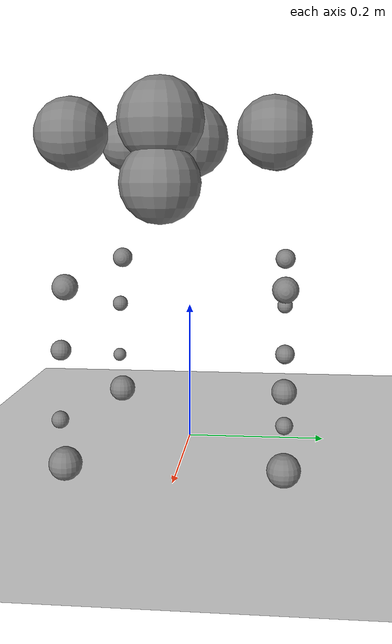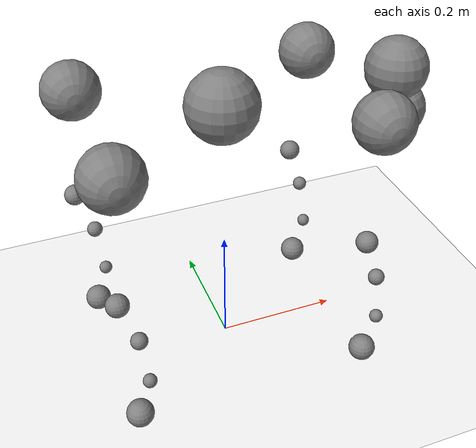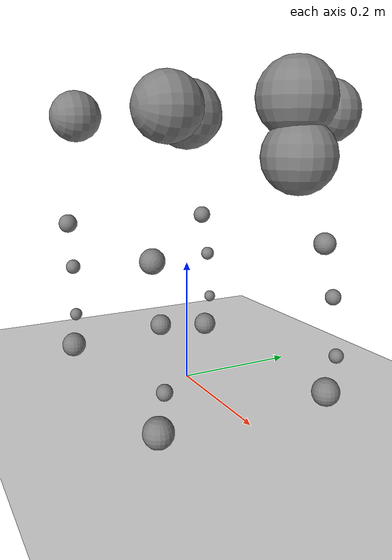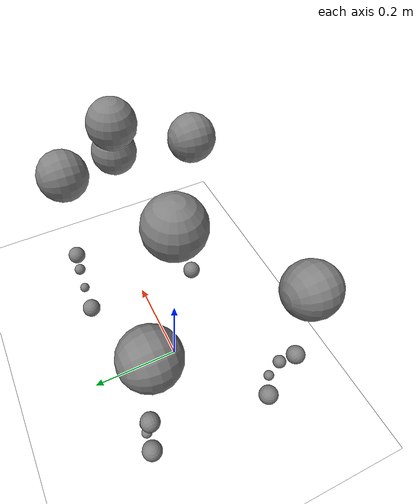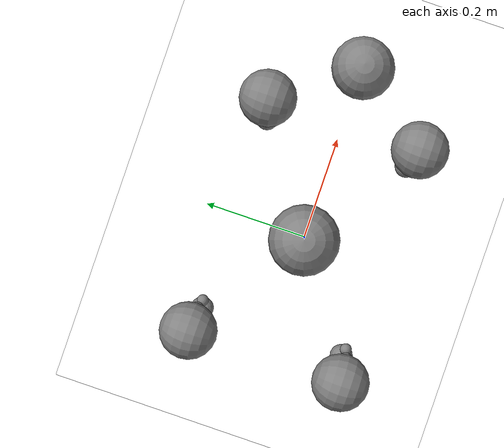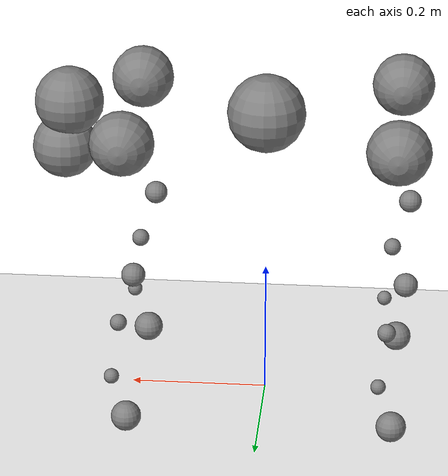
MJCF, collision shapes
<mujoco model="go2 feetonly flat terrain scene">
  <include file="go2_mjx_feetonly.xml"/>

  <statistic center="0 0 0.1" extent="0.8" meansize="0.04"/>

  <visual>
    <headlight diffuse=".8 .8 .8" ambient=".2 .2 .2" specular="1 1 1"/>
    <rgba force="1 0 0 1"/>
    <global azimuth="120" elevation="-20"/>
    <map force="0.01"/>
    <scale forcewidth="0.3" contactwidth="0.5" contactheight="0.2"/>
    <quality shadowsize="8192"/>
  </visual>

  <asset>
    <texture type="skybox" builtin="gradient" rgb1="1 1 1" rgb2="1 1 1" width="800" height="800"/>
    <texture type="2d" name="groundplane" builtin="checker" mark="edge" rgb1="1 1 1" rgb2="1 1 1" markrgb="0 0 0"
      width="300" height="300"/>
    <material name="groundplane" texture="groundplane" texuniform="true" texrepeat="5 5" reflectance="0"/>
  </asset>

  <worldbody>
    <geom name="floor" size="0 0 0.01" type="plane" material="groundplane" contype="1" conaffinity="0" priority="1"
      friction="0.6" condim="3"/>
  </worldbody>

  <keyframe>
    <key
    name="home"
    qpos="
    0 0 0.28
    1 0 0 0
    -0.1 0.9 -1.8
    0.1 0.9 -1.8
    -0.1 0.9 -1.8
    0.1 0.9 -1.8"
    ctrl="0.1 0.9 -1.8 -0.1 0.9 -1.8 0.1 0.9 -1.8 -0.1 0.9 -1.8"/>
    <key
    name="home_higher"
    qpos="0 0 0.31 1 0 0 0 0 0.82 -1.63 0 0.82 -1.63 0 0.82 -1.63 0 0.82 -1.63"
    ctrl="0 0.82 -1.63 0 0.82 -1.63 0 0.82 -1.63 0 0.82 -1.63"/>
  </keyframe>
</mujoco>

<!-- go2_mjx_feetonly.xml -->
<mujoco model="go2 feet only">
  <compiler angle="radian" meshdir="assets" autolimits="true"/>

  <option iterations="1" ls_iterations="5" timestep="0.004" integrator="Euler">
    <flag eulerdamp="disable"/>
  </option>

  <default>
    <default class="go2">
      <geom condim="1" contype="0" conaffinity="0"/>
      <joint axis="0 1 0" damping="2" armature="0.005"/>
      <position forcerange="-24 24" inheritrange="1" kp="75"/>
      <default class="abduction">
        <joint axis="1 0 0" range="-1.0472 1.0472" frictionloss="0.3"/>
      </default>
      <default class="hip">
        <joint range="-1.5708 3.4907" frictionloss="0.3"/>
      </default>
      <default class="knee">
        <joint range="-2.7227 -0.83776" frictionloss="1.0"/>
      </default>
      <default class="visual">
        <geom type="mesh" contype="0" conaffinity="0" group="2"/>
      </default>
      <default class="collision">
        <geom group="3"/>
        <default class="foot">
          <geom type="sphere" size="0.022" pos="0 0 -0.213" solimp="0.9 .95 0.022" contype="0" conaffinity="1"/>
          <site pos="0 0 -0.213"/>
        </default>
      </default>
    </default>
  </default>

  <asset>
    <material name="metal" rgba=".9 .95 .95 1"/>
    <material name="black" rgba="0 0 0 1"/>
    <material name="white" rgba="1 1 1 1"/>
    <material name="gray" rgba="0.671705 0.692426 0.774270 1"/>

    <mesh file="base_0.obj"/>
    <mesh file="base_1.obj"/>
    <mesh file="base_2.obj"/>
    <mesh file="base_3.obj"/>
    <mesh file="base_4.obj"/>
    <mesh file="hip_0.obj"/>
    <mesh file="hip_1.obj"/>
    <mesh file="thigh_0.obj"/>
    <mesh file="thigh_1.obj"/>
    <mesh file="thigh_mirror_0.obj"/>
    <mesh file="thigh_mirror_1.obj"/>
    <mesh file="calf_0.obj"/>
    <mesh file="calf_1.obj"/>
    <mesh file="calf_mirror_0.obj"/>
    <mesh file="calf_mirror_1.obj"/>
    <mesh file="foot.obj"/>
  </asset>

  <worldbody>
    <light name="spotlight" mode="targetbodycom" target="base" pos="3 0 4"/>
    <body name="base" pos="0 0 0.445" childclass="go2">
      <camera name="track" pos="0.846 -1.465 0.916" xyaxes="0.866 0.500 0.000 -0.171 0.296 0.940" mode="trackcom"/>
      <inertial pos="0.021112 0 -0.005366" quat="-0.000543471 0.713435 -0.00173769 0.700719" mass="6.921"
        diaginertia="0.107027 0.0980771 0.0244531"/>
      <freejoint/>
      <geom mesh="base_0" material="black" class="visual"/>
      <geom mesh="base_1" material="black" class="visual"/>
      <geom mesh="base_2" material="black" class="visual"/>
      <geom mesh="base_3" material="white" class="visual"/>
      <geom mesh="base_4" material="gray" class="visual"/>
      <geom size="0.057 0.04675 0.057" class="collision"/>
      <geom size="0.05 0.045" pos="0.285 0 0.01" class="collision"/>
      <geom size="0.047" pos="0.293 0 -0.06" class="collision"/>
      <site name="imu" pos="-0.02557 0 0.04232"/>
      <body name="FL_hip" pos="0.1934 0.0465 0">
        <inertial pos="-0.0054 0.00194 -0.000105" quat="0.497014 0.499245 0.505462 0.498237" mass="0.678"
          diaginertia="0.00088403 0.000596003 0.000479967"/>
        <joint name="FL_hip_joint" class="abduction"/>
        <geom mesh="hip_0" material="metal" class="visual"/>
        <geom mesh="hip_1" material="gray" class="visual"/>
        <geom size="0.046 0.02" pos="0 0.08 0" quat="1 1 0 0" class="collision"/>
        <body name="FL_thigh" pos="0 0.0955 0">
          <inertial pos="-0.00374 -0.0223 -0.0327" quat="0.829533 0.0847635 -0.0200632 0.551623" mass="1.152"
            diaginertia="0.00594973 0.00584149 0.000878787"/>
          <joint name="FL_thigh_joint" class="hip"/>
          <geom mesh="thigh_0" material="metal" class="visual"/>
          <geom mesh="thigh_1" material="gray" class="visual"/>
          <geom size="0.017 0.01225 0.017" pos="-0.015 0 -0.1955" quat="0.707107 0 0.707107 0" class="collision"/>
          <body name="FL_calf" pos="0 0 -0.213">
            <inertial pos="0.00629595 -0.000622121 -0.141417" quat="0.710672 0.00154099 -0.00450087 0.703508"
              mass="0.241352" diaginertia="0.0014901 0.00146356 5.31397e-05"/>
            <joint name="FL_calf_joint" class="knee"/>
            <geom mesh="calf_0" material="gray" class="visual"/>
            <geom mesh="calf_1" material="black" class="visual"/>
            <geom size="0.012 0.06" pos="0.008 0 -0.06" quat="0.994493 0 -0.104807 0" class="collision"/>
            <geom size="0.011 0.0325" pos="0.02 0 -0.148" quat="0.999688 0 0.0249974 0" class="collision"/>
            <geom pos="0 0 -0.213" mesh="foot" class="visual" material="black"/>
            <geom name="FL" class="foot"/>
            <site name="FL" class="foot"/>
          </body>
        </body>
      </body>
      <body name="FR_hip" pos="0.1934 -0.0465 0">
        <inertial pos="-0.0054 -0.00194 -0.000105" quat="0.498237 0.505462 0.499245 0.497014" mass="0.678"
          diaginertia="0.00088403 0.000596003 0.000479967"/>
        <joint name="FR_hip_joint" class="abduction"/>
        <geom mesh="hip_0" material="metal" class="visual" quat="4.63268e-05 1 0 0"/>
        <geom mesh="hip_1" material="gray" class="visual" quat="4.63268e-05 1 0 0"/>
        <geom size="0.046 0.02" pos="0 -0.08 0" quat="0.707107 0.707107 0 0" class="collision"/>
        <body name="FR_thigh" pos="0 -0.0955 0">
          <inertial pos="-0.00374 0.0223 -0.0327" quat="0.551623 -0.0200632 0.0847635 0.829533" mass="1.152"
            diaginertia="0.00594973 0.00584149 0.000878787"/>
          <joint name="FR_thigh_joint" class="hip"/>
          <geom mesh="thigh_mirror_0" material="metal" class="visual"/>
          <geom mesh="thigh_mirror_1" material="gray" class="visual"/>
          <geom size="0.017 0.01225 0.017" pos="-0.015 0 -0.1955" quat="0.707107 0 0.707107 0" class="collision"/>
          <body name="FR_calf" pos="0 0 -0.213">
            <inertial pos="0.00629595 0.000622121 -0.141417" quat="0.703508 -0.00450087 0.00154099 0.710672"
              mass="0.241352" diaginertia="0.0014901 0.00146356 5.31397e-05"/>
            <joint name="FR_calf_joint" class="knee"/>
            <geom mesh="calf_mirror_0" material="gray" class="visual"/>
            <geom mesh="calf_mirror_1" material="black" class="visual"/>
            <geom size="0.013 0.06" pos="0.01 0 -0.06" quat="0.995004 0 -0.0998334 0" class="collision"/>
            <geom size="0.011 0.0325" pos="0.02 0 -0.148" quat="0.999688 0 0.0249974 0" class="collision"/>
            <geom pos="0 0 -0.213" mesh="foot" class="visual" material="black"/>
            <geom name="FR" class="foot"/>
            <site name="FR" class="foot"/>
          </body>
        </body>
      </body>
      <body name="RL_hip" pos="-0.1934 0.0465 0">
        <inertial pos="0.0054 0.00194 -0.000105" quat="0.505462 0.498237 0.497014 0.499245" mass="0.678"
          diaginertia="0.00088403 0.000596003 0.000479967"/>
        <joint name="RL_hip_joint" class="abduction"/>
        <geom mesh="hip_0" material="metal" class="visual" quat="4.63268e-05 0 1 0"/>
        <geom mesh="hip_1" material="gray" class="visual" quat="4.63268e-05 0 1 0"/>
        <geom size="0.046 0.02" pos="0 0.08 0" quat="0.707107 0.707107 0 0" class="collision"/>
        <body name="RL_thigh" pos="0 0.0955 0">
          <inertial pos="-0.00374 -0.0223 -0.0327" quat="0.829533 0.0847635 -0.0200632 0.551623" mass="1.152"
            diaginertia="0.00594973 0.00584149 0.000878787"/>
          <joint name="RL_thigh_joint" class="hip"/>
          <geom mesh="thigh_0" material="metal" class="visual"/>
          <geom mesh="thigh_1" material="gray" class="visual"/>
          <geom size="0.017 0.01225 0.017" pos="-0.015 0 -0.1955" quat="0.707107 0 0.707107 0" class="collision"/>
          <body name="RL_calf" pos="0 0 -0.213">
            <inertial pos="0.00629595 -0.000622121 -0.141417" quat="0.710672 0.00154099 -0.00450087 0.703508"
              mass="0.241352" diaginertia="0.0014901 0.00146356 5.31397e-05"/>
            <joint name="RL_calf_joint" class="knee"/>
            <geom mesh="calf_0" material="gray" class="visual"/>
            <geom mesh="calf_1" material="black" class="visual"/>
            <geom size="0.013 0.06" pos="0.01 0 -0.06" quat="0.995004 0 -0.0998334 0" class="collision"/>
            <geom size="0.011 0.0325" pos="0.02 0 -0.148" quat="0.999688 0 0.0249974 0" class="collision"/>
            <geom pos="0 0 -0.213" mesh="foot" class="visual" material="black"/>
            <geom name="RL" class="foot"/>
            <site name="RL" class="foot"/>
          </body>
        </body>
      </body>
      <body name="RR_hip" pos="-0.1934 -0.0465 0">
        <inertial pos="0.0054 -0.00194 -0.000105" quat="0.499245 0.497014 0.498237 0.505462" mass="0.678"
          diaginertia="0.00088403 0.000596003 0.000479967"/>
        <joint name="RR_hip_joint" class="abduction"/>
        <geom mesh="hip_0" material="metal" class="visual" quat="2.14617e-09 4.63268e-05 4.63268e-05 -1"/>
        <geom mesh="hip_1" material="gray" class="visual" quat="2.14617e-09 4.63268e-05 4.63268e-05 -1"/>
        <geom size="0.046 0.02" pos="0 -0.08 0" quat="0.707107 0.707107 0 0" class="collision"/>
        <body name="RR_thigh" pos="0 -0.0955 0">
          <inertial pos="-0.00374 0.0223 -0.0327" quat="0.551623 -0.0200632 0.0847635 0.829533" mass="1.152"
            diaginertia="0.00594973 0.00584149 0.000878787"/>
          <joint name="RR_thigh_joint" class="hip"/>
          <geom mesh="thigh_mirror_0" material="metal" class="visual"/>
          <geom mesh="thigh_mirror_1" material="gray" class="visual"/>
          <geom size="0.017 0.01225 0.017" pos="-0.015 0 -0.1955" quat="0.707107 0 0.707107 0" class="collision"/>
          <body name="RR_calf" pos="0 0 -0.213">
            <inertial pos="0.00629595 0.000622121 -0.141417" quat="0.703508 -0.00450087 0.00154099 0.710672"
              mass="0.241352" diaginertia="0.0014901 0.00146356 5.31397e-05"/>
            <joint name="RR_calf_joint" class="knee"/>
            <geom mesh="calf_mirror_0" material="gray" class="visual"/>
            <geom mesh="calf_mirror_1" material="black" class="visual"/>
            <geom size="0.013 0.06" pos="0.01 0 -0.06" quat="0.995004 0 -0.0998334 0" class="collision"/>
            <geom size="0.011 0.0325" pos="0.02 0 -0.148" quat="0.999688 0 0.0249974 0" class="collision"/>
            <geom pos="0 0 -0.213" mesh="foot" class="visual" material="black"/>
            <geom name="RR" class="foot"/>
            <site name="RR" class="foot"/>
          </body>
        </body>
      </body>
    </body>
  </worldbody>

  <actuator>
    <position class="abduction" name="FR_hip" joint="FR_hip_joint"/>
    <position class="hip" name="FR_thigh" joint="FR_thigh_joint"/>
    <position class="knee" name="FR_calf" joint="FR_calf_joint"/>
    <position class="abduction" name="FL_hip" joint="FL_hip_joint"/>
    <position class="hip" name="FL_thigh" joint="FL_thigh_joint"/>
    <position class="knee" name="FL_calf" joint="FL_calf_joint"/>
    <position class="abduction" name="RR_hip" joint="RR_hip_joint"/>
    <position class="hip" name="RR_thigh" joint="RR_thigh_joint"/>
    <position class="knee" name="RR_calf" joint="RR_calf_joint"/>
    <position class="abduction" name="RL_hip" joint="RL_hip_joint"/>
    <position class="hip" name="RL_thigh" joint="RL_thigh_joint"/>
    <position class="knee" name="RL_calf" joint="RL_calf_joint"/>
  </actuator>

  <sensor>
    <gyro site="imu" name="gyro"/>
    <velocimeter site="imu" name="local_linvel"/>
    <accelerometer site="imu" name="accelerometer"/>
    <framepos objtype="site" objname="imu" name="position"/>
    <framezaxis objtype="site" objname="imu" name="upvector"/>
    <framexaxis objtype="site" objname="imu" name="forwardvector"/>
    <framelinvel objtype="site" objname="imu" name="global_linvel"/>
    <frameangvel objtype="site" objname="imu" name="global_angvel"/>
    <framequat objtype="site" objname="imu" name="orientation"/>
    <framelinvel objtype="site" objname="FR" name="FR_global_linvel"/>
    <framelinvel objtype="site" objname="FL" name="FL_global_linvel"/>
    <framelinvel objtype="site" objname="RR" name="RR_global_linvel"/>
    <framelinvel objtype="site" objname="RL" name="RL_global_linvel"/>
    <framepos objtype="site" objname="FR" name="FR_pos" reftype="site" refname="imu"/>
    <framepos objtype="site" objname="FL" name="FL_pos" reftype="site" refname="imu"/>
    <framepos objtype="site" objname="RR" name="RR_pos" reftype="site" refname="imu"/>
    <framepos objtype="site" objname="RL" name="RL_pos" reftype="site" refname="imu"/>
  </sensor>
</mujoco>
